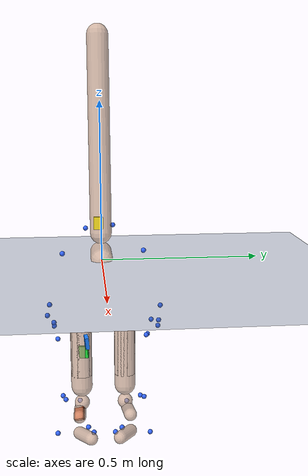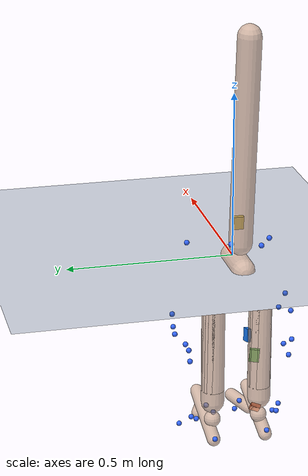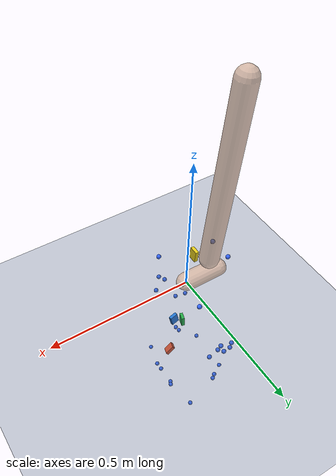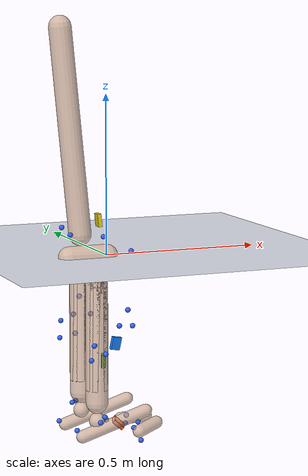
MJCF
<mujoco model="AB08">
  <compiler angle="radian" autolimits="true"/>
  <option timestep="0.005" gravity="0 0 -9.81"><flag contact="disable"/></option>
  <visual><global offwidth="1280" offheight="720"/></visual>
  <default><joint limited="false" damping="0"/><geom contype="0" conaffinity="0"/></default>
  <asset>
    <texture name="grid" type="2d" builtin="checker" rgb1="0.2 0.3 0.4" rgb2="0.3 0.4 0.5" width="512" height="512"/>
    <material name="grid" texture="grid" texrepeat="2 2" texuniform="true"/>
    <material name="skin" rgba="0.8 0.65 0.55 0.7"/>
  </asset>
  <worldbody>
    <light pos="0 0 4" dir="0 0 -1"/>
    <geom name="floor" type="plane" size="0 0 0.05" material="grid"/>
    <body name="pelvis" pos="0 0 0" quat="1 0 0 0">
      <joint name="pelvis_tx" type="slide" axis="1 0 0"/>
      <joint name="pelvis_ty" type="slide" axis="0 0 1"/>
      <joint name="pelvis_tz" type="slide" axis="0 -1 0"/>
      <joint name="pelvis_tilt" type="hinge" axis="0 -1 0"/>
      <joint name="pelvis_list" type="hinge" axis="1 0 0"/>
      <joint name="pelvis_rotation" type="hinge" axis="0 0 1"/>
      <inertial pos="-0.061301055 0 0" mass="11.3458" diaginertia="0.11345773 0.11345773 0.11345773"/>
      <geom type="capsule" fromto="0 0 0 -0.12260211 0 0" size="0.035" material="skin" mass="0"/>
      <site name="m_R_ASIS" pos="0.032729276 -0.12403509 0.030342535" size="0.008" rgba="0.2 0.4 1 1" group="2"/>
      <site name="m_L_ASIS" pos="0.038390685 0.12945459 0.036415428" size="0.008" rgba="0.2 0.4 1 1" group="2"/>
      <site name="m_L_PSIS" pos="-0.1326003 0.040568306 0.088827329" size="0.008" rgba="0.2 0.4 1 1" group="2"/>
      <site name="m_R_PSIS" pos="-0.13639476 -0.049620123 0.078649323" size="0.008" rgba="0.2 0.4 1 1" group="2"/>
      <body name="femur_r" pos="-0.061301055 -0.072399407 -0.057312584" quat="1 0 0 0">
        <joint name="hip_flexion_r" type="hinge" axis="0 -1 0"/>
        <joint name="hip_adduction_r" type="hinge" axis="1 0 0"/>
        <joint name="hip_rotation_r" type="hinge" axis="0 0 1"/>
        <inertial pos="0 0 -0.17443065" mass="8.96082" diaginertia="0.089608194 0.089608194 0.089608194"/>
        <geom type="capsule" fromto="0 0 0 0 0 -0.34886129" size="0.035" material="skin" mass="0"/>
        <site name="m_R_Thigh_Upper" pos="0.065402083 -0.096911585 -0.084521034" size="0.008" rgba="0.2 0.4 1 1" group="2"/>
        <site name="m_R_Thigh_Front" pos="0.085682136 -0.083705837 -0.13772673" size="0.008" rgba="0.2 0.4 1 1" group="2"/>
        <site name="m_R_Thigh_Rear" pos="0.033878038 -0.1061419 -0.12940572" size="0.008" rgba="0.2 0.4 1 1" group="2"/>
        <site name="m_R_Knee_Lat" pos="0.0018871106 -0.06330957 -0.42088846" size="0.008" rgba="0.2 0.4 1 1" group="2"/>
        <site name="imu_thigh" type="box" size="0.02 0.015 0.006" pos="0.069856169 0.018610763 -0.21203216" quat="0.48624149 0.59181737 -0.44725051 0.46183157" rgba="0.1 0.5 1 1" group="1"/>
        <body name="tibia_r" pos="0 0 0" quat="1 0 0 0">
          <joint name="knee_r_translation1" type="slide" axis="1 0 0"/>
          <joint name="knee_r_translation2" type="slide" axis="0 0 1"/>
          <joint name="knee_angle_r" type="hinge" axis="0 -1 0"/>
          <inertial pos="0 0 -0.1944606" mass="3.57175" diaginertia="0.03571746 0.03571746 0.03571746"/>
          <geom type="capsule" fromto="0 0 0 0 0 -0.38892121" size="0.035" material="skin" mass="0"/>
          <site name="m_R_Shank_Upper" pos="-0.040051153 -0.087899735 -0.18929611" size="0.008" rgba="0.2 0.4 1 1" group="2"/>
          <site name="m_R_Shank_Front" pos="0.0014681371 -0.075545175 -0.22111135" size="0.008" rgba="0.2 0.4 1 1" group="2"/>
          <site name="m_R_Shank_Rear" pos="-0.045845086 -0.077438271 -0.23653427" size="0.008" rgba="0.2 0.4 1 1" group="2"/>
          <site name="m_R_Ankle_Lat" pos="-0.0086556779 -0.054515349 -0.4395698" size="0.008" rgba="0.2 0.4 1 1" group="2"/>
          <site name="imu_shank" type="box" size="0.02 0.015 0.006" pos="0.024406007 0.0087105735 -0.26098321" quat="0.69896029 0.1369245 0.69756029 -0.078203886" rgba="0.1 0.8 0.2 1" group="1"/>
          <body name="talus_r" pos="0 0 -0.44787391" quat="1 0 0 0">
            <joint name="ankle_angle_r" type="hinge" axis="-0.10501355 -0.97912632 -0.17402245"/>
            <inertial pos="0 0 0" mass="0.0963384" diaginertia="0.00096338394 0.00096338394 0.00096338394"/>
            <geom type="sphere" size="0.025" material="skin" mass="0"/>
            <body name="calcn_r" pos="-0.050797234 -0.0082492125 -0.043693746" quat="1 0 0 0">
              <joint name="subtalar_angle_r" type="hinge" axis="0.78717961 0.12094949 0.60474746"/>
              <inertial pos="0.10476323 0 0.031428969" mass="1.20423" diaginertia="0.012042299 0.012042299 0.012042299"/>
              <geom type="capsule" fromto="0 0 0 0.20952646 0 0.062857937" size="0.02" material="skin" mass="0"/>
              <site name="m_R_Heel" pos="-0.018012527 0.00044364088 0.021611901" size="0.008" rgba="0.2 0.4 1 1" group="2"/>
              <site name="m_R_Toe_Lat" pos="0.16547209 -0.071166354 -0.010152418" size="0.008" rgba="0.2 0.4 1 1" group="2"/>
              <site name="m_R_Toe_Med" pos="0.18721884 0.044677749 -0.0024458822" size="0.008" rgba="0.2 0.4 1 1" group="2"/>
              <site name="m_R_Toe_Tip" pos="0.19502783 0.027206992 0.019885095" size="0.008" rgba="0.2 0.4 1 1" group="2"/>
              <site name="imu_foot" type="box" size="0.02 0.015 0.006" pos="0.11739147 -0.00068098342 0.032227351" quat="0.91446206 0.17767744 0.35099677 -0.094821612" rgba="1 0.3 0.1 1" group="1"/>
              <body name="toes_r" pos="0.18731665 -0.0011314429 -0.0020952646" quat="1 0 0 0">
                <joint name="mtp_angle_r" type="hinge" axis="-0.5809544 -0.81393611 0"/>
                <inertial pos="0.036248077 0.018333565 0.0062857937" mass="0.208669" diaginertia="0.0020866896 0.0020866896 0.0020866896"/>
                <geom type="capsule" fromto="0 0 0 0.072496154 0.03666713 0.012571587" size="0.02" material="skin" mass="0"/>
              </body>
            </body>
          </body>
        </body>
      </body>
      <body name="femur_l" pos="-0.061301055 0.072399407 -0.057312584" quat="1 0 0 0">
        <joint name="hip_flexion_l" type="hinge" axis="0 -1 0"/>
        <joint name="hip_adduction_l" type="hinge" axis="-1 0 0"/>
        <joint name="hip_rotation_l" type="hinge" axis="0 0 -1"/>
        <inertial pos="0 0 -0.17443065" mass="8.96082" diaginertia="0.089608194 0.089608194 0.089608194"/>
        <geom type="capsule" fromto="0 0 0 0 0 -0.34886129" size="0.035" material="skin" mass="0"/>
        <site name="m_L_Thigh_Upper" pos="0.03756774 0.11634667 -0.10503639" size="0.008" rgba="0.2 0.4 1 1" group="2"/>
        <site name="m_L_Thigh_Front" pos="0.072532826 0.10489511 -0.16302476" size="0.008" rgba="0.2 0.4 1 1" group="2"/>
        <site name="m_L_Thigh_Rear" pos="0.016793301 0.11304724 -0.16179479" size="0.008" rgba="0.2 0.4 1 1" group="2"/>
        <site name="m_L_Knee_Lat" pos="0.0040369888 0.064379632 -0.43535259" size="0.008" rgba="0.2 0.4 1 1" group="2"/>
        <body name="tibia_l" pos="0 0 0" quat="1 0 0 0">
          <joint name="knee_l_translation1" type="slide" axis="1 0 0"/>
          <joint name="knee_l_translation2" type="slide" axis="0 0 1"/>
          <joint name="knee_angle_l" type="hinge" axis="0 -1 0"/>
          <inertial pos="0 0 -0.1944606" mass="3.57175" diaginertia="0.03571746 0.03571746 0.03571746"/>
          <geom type="capsule" fromto="0 0 0 0 0 -0.38892121" size="0.035" material="skin" mass="0"/>
          <site name="m_L_Shank_Upper" pos="-0.033426637 0.092816107 -0.17446271" size="0.008" rgba="0.2 0.4 1 1" group="2"/>
          <site name="m_L_Shank_Front" pos="0.0075555972 0.072254897 -0.2152078" size="0.008" rgba="0.2 0.4 1 1" group="2"/>
          <site name="m_L_Shank_Rear" pos="-0.04160668 0.080801379 -0.22779728" size="0.008" rgba="0.2 0.4 1 1" group="2"/>
          <site name="m_L_Ankle_Lat" pos="-0.011229434 0.052513754 -0.43621009" size="0.008" rgba="0.2 0.4 1 1" group="2"/>
          <body name="talus_l" pos="0 0 -0.44787391" quat="1 0 0 0">
            <joint name="ankle_angle_l" type="hinge" axis="0.10501355 -0.97912632 0.17402245"/>
            <inertial pos="0 0 0" mass="0.0963384" diaginertia="0.00096338394 0.00096338394 0.00096338394"/>
            <geom type="sphere" size="0.025" material="skin" mass="0"/>
            <body name="calcn_l" pos="-0.050797234 0.0082492125 -0.043693746" quat="1 0 0 0">
              <joint name="subtalar_angle_l" type="hinge" axis="-0.78717961 0.12094949 -0.60474746"/>
              <inertial pos="0.10476323 0 0.031428969" mass="1.20423" diaginertia="0.012042299 0.012042299 0.012042299"/>
              <geom type="capsule" fromto="0 0 0 0.20952646 0 0.062857937" size="0.02" material="skin" mass="0"/>
              <site name="m_L_Heel" pos="-0.020217419 0.0010819277 0.011575676" size="0.008" rgba="0.2 0.4 1 1" group="2"/>
              <site name="m_L_Toe_Lat" pos="0.16457842 0.066898664 -0.020737873" size="0.008" rgba="0.2 0.4 1 1" group="2"/>
              <site name="m_L_Toe_Med" pos="0.18536099 -0.047730717 -0.0053629147" size="0.008" rgba="0.2 0.4 1 1" group="2"/>
              <site name="m_L_Toe_Tip" pos="0.19736376 -0.027066302 0.014808056" size="0.008" rgba="0.2 0.4 1 1" group="2"/>
              <body name="toes_l" pos="0.18731665 0.0011314429 -0.0020952646" quat="1 0 0 0">
                <joint name="mtp_angle_l" type="hinge" axis="0.5809544 -0.81393611 0"/>
                <inertial pos="0.036248077 -0.018333565 0.0062857937" mass="0.208669" diaginertia="0.0020866896 0.0020866896 0.0020866896"/>
                <geom type="capsule" fromto="0 0 0 0.072496154 -0.03666713 0.012571587" size="0.02" material="skin" mass="0"/>
              </body>
            </body>
          </body>
        </body>
      </body>
      <body name="torso" pos="-0.087312817 0 0.070665289" quat="1 0 0 0">
        <joint name="lumbar_extension" type="hinge" axis="0 -1 0"/>
        <joint name="lumbar_bending" type="hinge" axis="1 0 0"/>
        <joint name="lumbar_rotation" type="hinge" axis="0 0 1"/>
        <inertial pos="-0.029830658 0 0.31819368" mass="32.983" diaginertia="0.32982991 0.32982991 0.32982991"/>
        <geom type="capsule" fromto="0 0 0 -0.059661316 0 0.63638737" size="0.035" material="skin" mass="0"/>
        <site name="imu_trunk" type="box" size="0.02 0.015 0.006" pos="0.057337456 -0.0091236456 0.043232745" quat="0.74077311 0.0085162837 0.67168528 -0.004642375" rgba="0.9 0.8 0.1 1" group="1"/>
      </body>
    </body>
  </worldbody>
  <sensor>
<accelerometer name="imu_foot_acc" site="imu_foot"/>
<gyro name="imu_foot_gyr" site="imu_foot"/>
<accelerometer name="imu_shank_acc" site="imu_shank"/>
<gyro name="imu_shank_gyr" site="imu_shank"/>
<accelerometer name="imu_thigh_acc" site="imu_thigh"/>
<gyro name="imu_thigh_gyr" site="imu_thigh"/>
<accelerometer name="imu_trunk_acc" site="imu_trunk"/>
<gyro name="imu_trunk_gyr" site="imu_trunk"/>
</sensor>
</mujoco>
